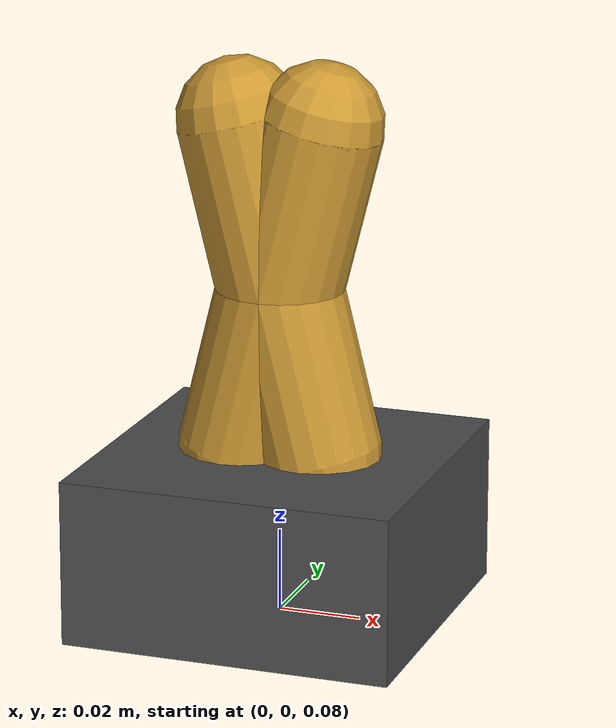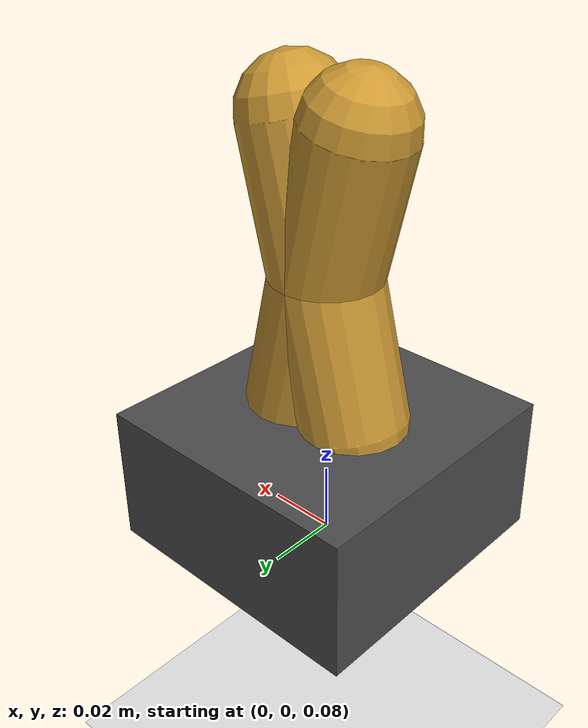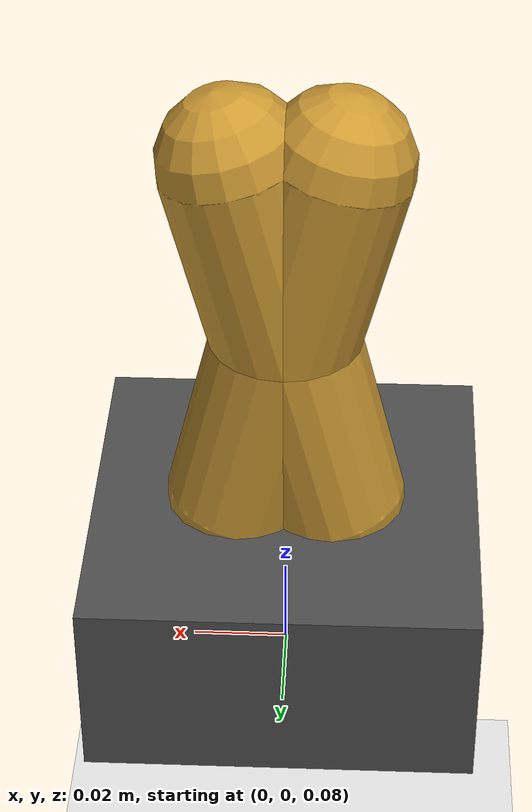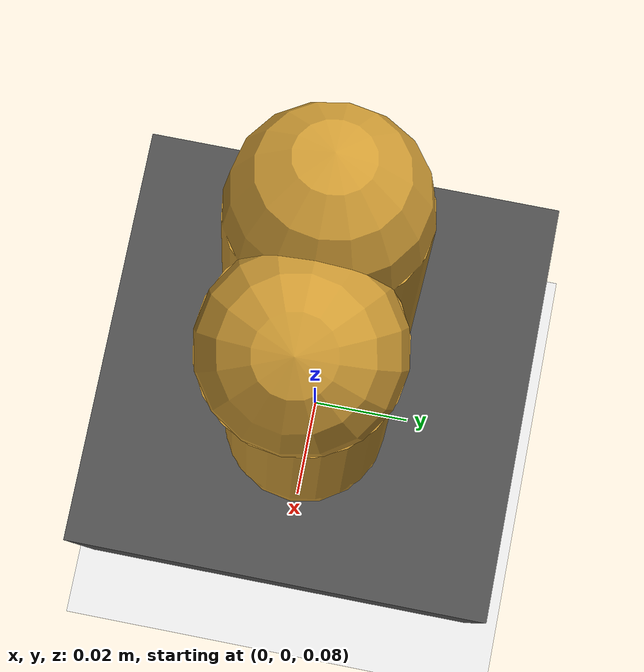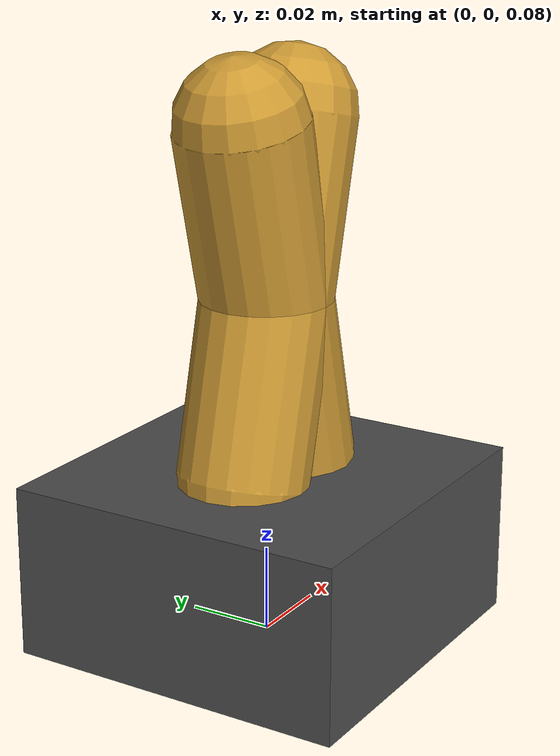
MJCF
<?xml version="1.0" ?>
<mujoco model="collision_risk_gripper">
  <compiler angle="radian"/>
  <option timestep="0.002" gravity="0 0 -9.81"/>

  <worldbody>
    <light diffuse=".5 .5 .5" pos="0 0 3" dir="0 0 -1"/>
    <geom name="floor" type="plane" size="1 1 0.1" rgba=".9 .9 .9 1"/>

    <body name="base" pos="0 0 0.1">
      <geom name="base_geom" type="box" size="0.04 0.04 0.02" mass="0.1" rgba="0.3 0.3 0.3 1"/>

      <body name="finger_left" pos="-0.01 0 0.02">
        <joint name="finger_left_joint" type="hinge" axis="0 1 0" range="-1.5 1.5"/>
        <geom name="finger_left_geom" type="capsule" fromto="0 0 0 0.02 0 0.08" size="0.015" mass="0.03" rgba="0.8 0.6 0.2 1"/>
      </body>

      <body name="finger_right" pos="0.01 0 0.02">
        <joint name="finger_right_joint" type="hinge" axis="0 1 0" range="-1.5 1.5"/>
        <geom name="finger_right_geom" type="capsule" fromto="0 0 0 -0.02 0 0.08" size="0.015" mass="0.03" rgba="0.8 0.6 0.2 1"/>
      </body>
    </body>
  </worldbody>

  <actuator>
    <position name="finger_left_act" joint="finger_left_joint" kp="10"/>
    <position name="finger_right_act" joint="finger_right_joint" kp="10"/>
  </actuator>
</mujoco>
